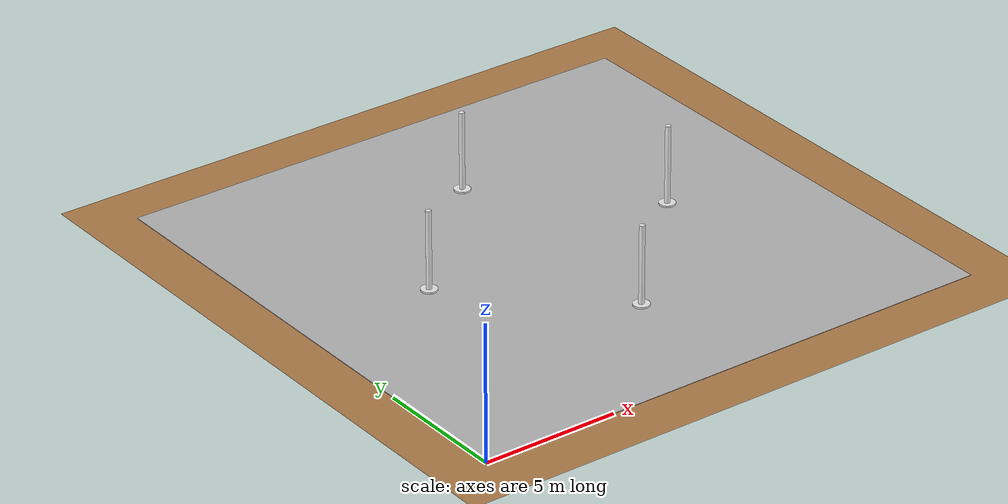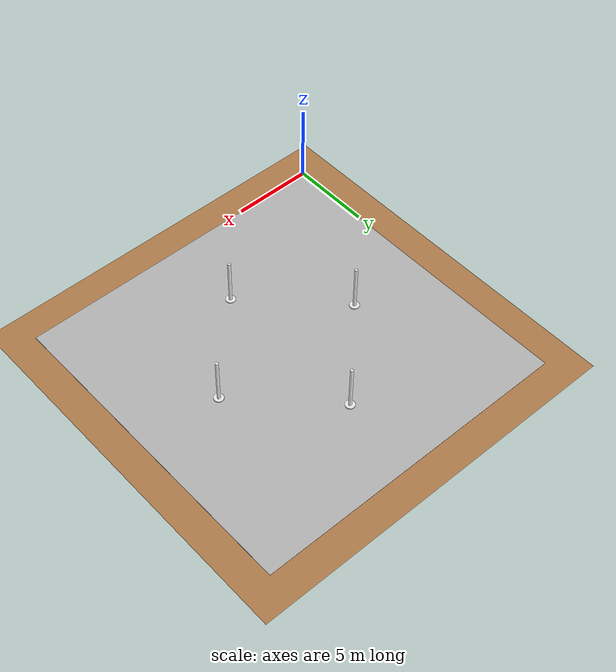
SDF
<sdf version="1.4">
 <world name="default">
  <include><uri>model://wood_plane</uri><pose>10 10 -0.01 0 0 0</pose></include>
  <include><uri>model://game_plane</uri><pose>10 10 0 0 0 0</pose></include>
  <include><uri>model://sun</uri></include>
  <include><uri>model://iarc_obstacle</uri><pose>10 5 0 0 0 0</pose></include>
  <include><uri>model://iarc_obstacle</uri><pose>15 10 0 0 0 0</pose></include>
  <include><uri>model://iarc_obstacle</uri><pose>10 15 0 0 0 0</pose></include>
  <include><uri>model://iarc_obstacle</uri><pose>5 10 0 0 0 0</pose></include>
 </world>
</sdf>

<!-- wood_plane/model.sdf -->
<sdf version="1.5">
  <model name="wood_plane">
    <static>true</static>
    <link name="link">
      <collision name="collision">
        <geometry>
          <plane>
            <normal>0 0 1</normal>
            <size>40 40</size>
          </plane>
        </geometry>
        <surface>
          <friction>
            <ode>
              <mu>100</mu>
              <mu2>50</mu2>
            </ode>
          </friction>
        </surface>
      </collision>
      <visual name="visual">
        <cast_shadows>false</cast_shadows>
        <geometry>
          <plane>
            <normal>0 0 1</normal>
            <size>40 40</size>
          </plane>
        </geometry>
        <material>
          <script>
			<uri>model://wood_plane/materials/scripts/wood_plane.material</uri>
			<uri>model://wood_plane/materials/textures/wood.jpeg</uri>
			<name>Wood</name>
          </script>
        </material>
      </visual>
    </link>
  </model>
</sdf>

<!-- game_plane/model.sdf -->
<sdf version="1.5">
  <model name="game_plane">
    <static>true</static>
    <link name="link">
      <collision name="collision">
        <geometry>
          <plane>
            <normal>0 0 1</normal>
            <size>20 20</size>
          </plane>
        </geometry>
        <surface>
          <friction>
            <ode>
              <mu>100</mu>
              <mu2>50</mu2>
            </ode>
          </friction>
        </surface>
      </collision>
      <visual name="visual">
        <cast_shadows>false</cast_shadows>
        <geometry>
          <plane>
            <normal>0 0 1</normal>
            <size>20 20</size>
          </plane>
        </geometry>
        <material>
          <script>
			<uri>model://game_plane/materials/scripts/game_plane.material</uri>
			<uri>model://game_plane/materials/textures/rute.jpg</uri>
            <name>SingleGrid</name>
          </script>
        </material>
      </visual>
    </link>
  </model>
</sdf>

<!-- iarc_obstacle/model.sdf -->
<sdf version='1.6'>
<model name='iarc_obstacle'>
    <pose frame=''>5 0 0 0 0 0</pose>
    <link name='link_11'>
      <pose frame=''>0 0 0.035 0 -0 0</pose>
      <inertial>
        <mass>1</mass>
        <inertia>
          <ixx>0.145833</ixx>
          <ixy>0</ixy>
          <ixz>0</ixz>
          <iyy>0.145833</iyy>
          <iyz>0</iyz>
          <izz>0.125</izz>
        </inertia>
        <pose frame=''>0 0 0 0 0 0</pose>
      </inertial>
      <gravity>0</gravity>
      <self_collide>0</self_collide>
      <kinematic>0</kinematic>
      <visual name='visual'>
        <pose frame=''>0 0 0 0 -0 0</pose>
        <geometry>
          <cylinder>
            <radius>0.3</radius>
            <length>0.07</length>
          </cylinder>
        </geometry>
        <material>
          <lighting>1</lighting>
          <script>
            <uri>file://media/materials/scripts/gazebo.material</uri>
            <name>Gazebo/White</name>
          </script>
          <emissive>0 0 0 1</emissive>
          <shader type='vertex'>
            <normal_map>__default__</normal_map>
          </shader>
        </material>
        <transparency>0</transparency>
        <cast_shadows>1</cast_shadows>
      </visual>
      <collision name='collision'>
        <laser_retro>0</laser_retro>
        <max_contacts>10</max_contacts>
        <pose frame=''>0 0 0 0 -0 0</pose>
        <geometry>
          <cylinder>
            <radius>0.3</radius>
            <length>0.07</length>
          </cylinder>
        </geometry>
        <surface>
          <friction>
            <ode>
              <mu>0</mu>
              <mu2>0</mu2>
              <fdir1>0 0 0</fdir1>
              <slip1>0</slip1>
              <slip2>0</slip2>
            </ode>
            <torsional>
              <coefficient>0</coefficient>
              <patch_radius>0</patch_radius>
              <surface_radius>0</surface_radius>
              <use_patch_radius>1</use_patch_radius>
              <ode>
                <slip>0</slip>
              </ode>
            </torsional>
          </friction>
          <bounce>
            <restitution_coefficient>0</restitution_coefficient>
            <threshold>1e+06</threshold>
          </bounce>
          <contact>
            <collide_without_contact>0</collide_without_contact>
            <collide_without_contact_bitmask>1</collide_without_contact_bitmask>
            <collide_bitmask>1</collide_bitmask>
            <ode>
              <soft_cfm>0</soft_cfm>
              <soft_erp>0.2</soft_erp>
              <kp>1e+13</kp>
              <kd>1</kd>
              <max_vel>0.01</max_vel>
              <min_depth>0</min_depth>
            </ode>
            <bullet>
              <split_impulse>1</split_impulse>
              <split_impulse_penetration_threshold>-0.01</split_impulse_penetration_threshold>
              <soft_cfm>0</soft_cfm>
              <soft_erp>0.2</soft_erp>
              <kp>1e+13</kp>
              <kd>1</kd>
            </bullet>
          </contact>
        </surface>
      </collision>

    </link>
    <link name='link_12'>
      <pose frame=''>0 0 1.5 0 0 0</pose>
      <inertial>
        <mass>0.1</mass>
        <inertia>
          <ixx>0.145833</ixx>
          <ixy>0</ixy>
          <ixz>0</ixz>
          <iyy>0.145833</iyy>
          <iyz>0</iyz>
          <izz>0.125</izz>
        </inertia>
      </inertial>
      <visual name='visual'>
        <pose frame=''>0 0 0 0 0 0</pose>
        <geometry>
          <cylinder>
            <radius>0.1</radius>
            <length>3</length>
          </cylinder>
        </geometry>
        <material>
          <lighting>1</lighting>
          <script>
            <uri>file://media/materials/scripts/gazebo.material</uri>
            <name>Gazebo/White</name>
          </script>
          <emissive>0 0 0 1</emissive>
        </material>
        <transparency>0</transparency>
        <cast_shadows>1</cast_shadows>
      </visual>
      <collision name='collision'>
        <laser_retro>0</laser_retro>
        <max_contacts>10</max_contacts>
        <pose frame=''>0 0 0 0 -0 0</pose>
        <geometry>
          <cylinder>
            <radius>0.1</radius>
            <length>3</length>
          </cylinder>
        </geometry>
        <surface>
          <friction>
            <ode>
              <mu>1</mu>
              <mu2>1</mu2>
              <fdir1>0 0 0</fdir1>
              <slip1>0</slip1>
              <slip2>0</slip2>
            </ode>
            <torsional>
              <coefficient>1</coefficient>
              <patch_radius>0</patch_radius>
              <surface_radius>0</surface_radius>
              <use_patch_radius>1</use_patch_radius>
              <ode>
                <slip>0</slip>
              </ode>
            </torsional>
          </friction>
          <bounce>
            <restitution_coefficient>0</restitution_coefficient>
            <threshold>1e+06</threshold>
          </bounce>
          <contact>
            <collide_without_contact>0</collide_without_contact>
            <collide_without_contact_bitmask>1</collide_without_contact_bitmask>
            <collide_bitmask>1</collide_bitmask>
            <ode>
              <soft_cfm>0</soft_cfm>
              <soft_erp>0.2</soft_erp>
              <kp>1e+13</kp>
              <kd>1</kd>
              <max_vel>0.01</max_vel>
              <min_depth>0</min_depth>
            </ode>
            <bullet>
              <split_impulse>1</split_impulse>
              <split_impulse_penetration_threshold>-0.01</split_impulse_penetration_threshold>
              <soft_cfm>0</soft_cfm>
              <soft_erp>0.2</soft_erp>
              <kp>1e+13</kp>
              <kd>1</kd>
            </bullet>
          </contact>
        </surface>
      </collision>
    </link>
    <joint name='link_11_JOINT_5' type='fixed'>
      <parent>link_11</parent>
      <child>link_12</child>
      <pose frame=''>0 0 0 0 -0 0</pose>
      <physics>
        <ode>
          <limit>
            <cfm>0</cfm>
            <erp>0.2</erp>
          </limit>
          <suspension>
            <cfm>0</cfm>
            <erp>0.2</erp>
          </suspension>
        </ode>
      </physics>
    </joint>
    <static>0</static>
    <allow_auto_disable>1</allow_auto_disable>

	<plugin name="iarc_obstacle" filename="libiarc_obstacle.so">
		<vel>0.33</vel>
	</plugin>
</model>
</sdf>
